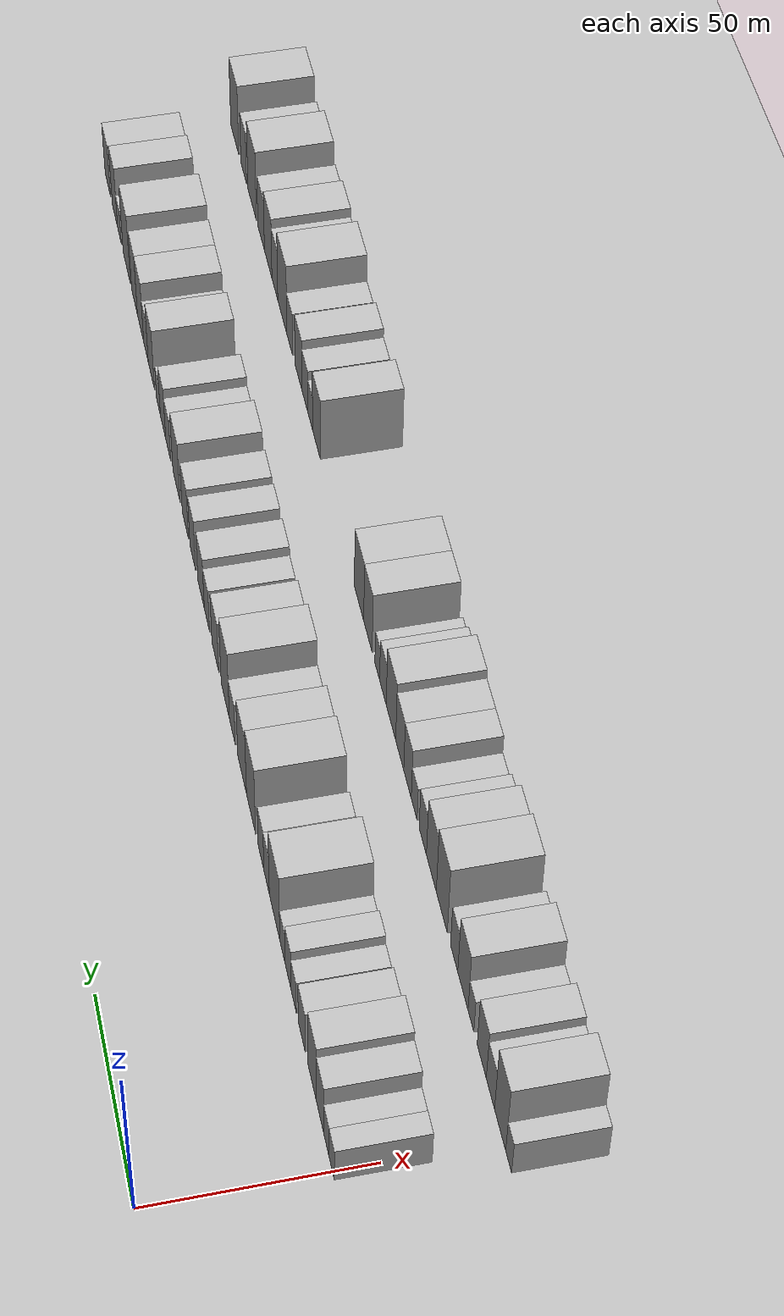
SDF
<sdf version="1.6">
 <world name="default">
  <include><name>ground_plane_1</name><uri>model://HANNAS_ground_plane</uri></include>
  <include>
   <name>ground_plane_2</name>
   <uri>model://HANNAS_ground_plane</uri>
   <pose>100 0 0  0 0 0</pose>
  </include>
  <model name="building_31">
   <static>1</static>
   <pose>50.0000 0.5402 0 0.000000 0.000000 0.000000</pose>
   <link name="link">
    <pose>0 0 6.00 0 0 0</pose>
    <collision name="collision"><geometry><box><size>20.0000 5.2715 12.0000</size></box></geometry></collision>
    <visual name="visual">
     <cast_shadows>0</cast_shadows>
     <geometry><box><size>20.0000 5.2715 12.0000</size></box></geometry>
     <material>
      <script>
       <uri>model://HANNAS_wall/materials/scripts</uri>
       <uri>model://HANNAS_wall/materials/textures</uri>
       <name>vrc/HANNAS_wall</name>
      </script>
     </material>
    </visual>
   </link>
  </model>
  <model name="building_32">
   <static>1</static>
   <pose>50.0000 5.8789 0 0.000000 0.000000 0.000000</pose>
   <link name="link">
    <pose>0 0 6.00 0 0 0</pose>
    <collision name="collision"><geometry><box><size>20.0000 5.4058 12.0000</size></box></geometry></collision>
    <visual name="visual">
     <cast_shadows>0</cast_shadows>
     <geometry><box><size>20.0000 5.4058 12.0000</size></box></geometry>
     <material>
      <script>
       <uri>model://HANNAS_wall/materials/scripts</uri>
       <uri>model://HANNAS_wall/materials/textures</uri>
       <name>vrc/HANNAS_wall</name>
      </script>
     </material>
    </visual>
   </link>
  </model>
  <model name="building_33">
   <static>1</static>
   <pose>50.0000 12.2712 0 0.000000 0.000000 0.000000</pose>
   <link name="link">
    <pose>0 0 9.00 0 0 0</pose>
    <collision name="collision"><geometry><box><size>20.0000 7.3789 18.0000</size></box></geometry></collision>
    <visual name="visual">
     <cast_shadows>0</cast_shadows>
     <geometry><box><size>20.0000 7.3789 18.0000</size></box></geometry>
     <material>
      <script>
       <uri>model://HANNAS_wall/materials/scripts</uri>
       <uri>model://HANNAS_wall/materials/textures</uri>
       <name>vrc/HANNAS_wall</name>
      </script>
     </material>
    </visual>
   </link>
  </model>
  <model name="building_34">
   <static>1</static>
   <pose>50.0000 20.3390 0 0.000000 0.000000 0.000000</pose>
   <link name="link">
    <pose>0 0 10.50 0 0 0</pose>
    <collision name="collision"><geometry><box><size>20.0000 8.7569 21.0000</size></box></geometry></collision>
    <visual name="visual">
     <cast_shadows>0</cast_shadows>
     <geometry><box><size>20.0000 8.7569 21.0000</size></box></geometry>
     <material>
      <script>
       <uri>model://HANNAS_wall/materials/scripts</uri>
       <uri>model://HANNAS_wall/materials/textures</uri>
       <name>vrc/HANNAS_wall</name>
      </script>
     </material>
    </visual>
   </link>
  </model>
  <model name="building_35">
   <static>1</static>
   <pose>50.0000 31.3894 0 0.000000 0.000000 0.000000</pose>
   <link name="link">
    <pose>0 0 7.50 0 0 0</pose>
    <collision name="collision"><geometry><box><size>20.0000 7.3439 15.0000</size></box></geometry></collision>
    <visual name="visual">
     <cast_shadows>0</cast_shadows>
     <geometry><box><size>20.0000 7.3439 15.0000</size></box></geometry>
     <material>
      <script>
       <uri>model://HANNAS_wall/materials/scripts</uri>
       <uri>model://HANNAS_wall/materials/textures</uri>
       <name>vrc/HANNAS_wall</name>
      </script>
     </material>
    </visual>
   </link>
  </model>
  <model name="building_36">
   <static>1</static>
   <pose>50.0000 39.9124 0 0.000000 0.000000 0.000000</pose>
   <link name="link">
    <pose>0 0 6.00 0 0 0</pose>
    <collision name="collision"><geometry><box><size>20.0000 5.7020 12.0000</size></box></geometry></collision>
    <visual name="visual">
     <cast_shadows>0</cast_shadows>
     <geometry><box><size>20.0000 5.7020 12.0000</size></box></geometry>
     <material>
      <script>
       <uri>model://HANNAS_wall/materials/scripts</uri>
       <uri>model://HANNAS_wall/materials/textures</uri>
       <name>vrc/HANNAS_wall</name>
      </script>
     </material>
    </visual>
   </link>
  </model>
  <model name="building_37">
   <static>1</static>
   <pose>50.0000 45.9449 0 0.000000 0.000000 0.000000</pose>
   <link name="link">
    <pose>0 0 7.50 0 0 0</pose>
    <collision name="collision"><geometry><box><size>20.0000 6.3630 15.0000</size></box></geometry></collision>
    <visual name="visual">
     <cast_shadows>0</cast_shadows>
     <geometry><box><size>20.0000 6.3630 15.0000</size></box></geometry>
     <material>
      <script>
       <uri>model://HANNAS_wall/materials/scripts</uri>
       <uri>model://HANNAS_wall/materials/textures</uri>
       <name>vrc/HANNAS_wall</name>
      </script>
     </material>
    </visual>
   </link>
  </model>
  <model name="building_38">
   <static>1</static>
   <pose>50.0000 52.0841 0 0.000000 0.000000 0.000000</pose>
   <link name="link">
    <pose>0 0 6.00 0 0 0</pose>
    <collision name="collision"><geometry><box><size>20.0000 5.9154 12.0000</size></box></geometry></collision>
    <visual name="visual">
     <cast_shadows>0</cast_shadows>
     <geometry><box><size>20.0000 5.9154 12.0000</size></box></geometry>
     <material>
      <script>
       <uri>model://HANNAS_wall/materials/scripts</uri>
       <uri>model://HANNAS_wall/materials/textures</uri>
       <name>vrc/HANNAS_wall</name>
      </script>
     </material>
    </visual>
   </link>
  </model>
  <model name="building_39">
   <static>1</static>
   <pose>50.0000 60.9253 0 0.000000 0.000000 0.000000</pose>
   <link name="link">
    <pose>0 0 12.00 0 0 0</pose>
    <collision name="collision"><geometry><box><size>20.0000 11.7671 24.0000</size></box></geometry></collision>
    <visual name="visual">
     <cast_shadows>0</cast_shadows>
     <geometry><box><size>20.0000 11.7671 24.0000</size></box></geometry>
     <material>
      <script>
       <uri>model://HANNAS_wall/materials/scripts</uri>
       <uri>model://HANNAS_wall/materials/textures</uri>
       <name>vrc/HANNAS_wall</name>
      </script>
     </material>
    </visual>
   </link>
  </model>
  <model name="building_40">
   <static>1</static>
   <pose>50.0000 69.9162 0 0.000000 0.000000 0.000000</pose>
   <link name="link">
    <pose>0 0 7.50 0 0 0</pose>
    <collision name="collision"><geometry><box><size>20.0000 6.2145 15.0000</size></box></geometry></collision>
    <visual name="visual">
     <cast_shadows>0</cast_shadows>
     <geometry><box><size>20.0000 6.2145 15.0000</size></box></geometry>
     <material>
      <script>
       <uri>model://HANNAS_wall/materials/scripts</uri>
       <uri>model://HANNAS_wall/materials/textures</uri>
       <name>vrc/HANNAS_wall</name>
      </script>
     </material>
    </visual>
   </link>
  </model>
  <model name="building_41">
   <static>1</static>
   <pose>50.0000 76.3128 0 0.000000 0.000000 0.000000</pose>
   <link name="link">
    <pose>0 0 7.50 0 0 0</pose>
    <collision name="collision"><geometry><box><size>20.0000 6.5787 15.0000</size></box></geometry></collision>
    <visual name="visual">
     <cast_shadows>0</cast_shadows>
     <geometry><box><size>20.0000 6.5787 15.0000</size></box></geometry>
     <material>
      <script>
       <uri>model://HANNAS_wall/materials/scripts</uri>
       <uri>model://HANNAS_wall/materials/textures</uri>
       <name>vrc/HANNAS_wall</name>
      </script>
     </material>
    </visual>
   </link>
  </model>
  <model name="building_42">
   <static>1</static>
   <pose>50.0000 87.9561 0 0.000000 0.000000 0.000000</pose>
   <link name="link">
    <pose>0 0 12.00 0 0 0</pose>
    <collision name="collision"><geometry><box><size>20.0000 10.7080 24.0000</size></box></geometry></collision>
    <visual name="visual">
     <cast_shadows>0</cast_shadows>
     <geometry><box><size>20.0000 10.7080 24.0000</size></box></geometry>
     <material>
      <script>
       <uri>model://HANNAS_wall/materials/scripts</uri>
       <uri>model://HANNAS_wall/materials/textures</uri>
       <name>vrc/HANNAS_wall</name>
      </script>
     </material>
    </visual>
   </link>
  </model>
  <model name="building_43">
   <static>1</static>
   <pose>50.0000 98.5569 0 0.000000 0.000000 0.000000</pose>
   <link name="link">
    <pose>0 0 10.50 0 0 0</pose>
    <collision name="collision"><geometry><box><size>20.0000 10.4936 21.0000</size></box></geometry></collision>
    <visual name="visual">
     <cast_shadows>0</cast_shadows>
     <geometry><box><size>20.0000 10.4936 21.0000</size></box></geometry>
     <material>
      <script>
       <uri>model://HANNAS_wall/materials/scripts</uri>
       <uri>model://HANNAS_wall/materials/textures</uri>
       <name>vrc/HANNAS_wall</name>
      </script>
     </material>
    </visual>
   </link>
  </model>
  <model name="building_44">
   <static>1</static>
   <pose>50.0000 110.4333 0 0.000000 0.000000 0.000000</pose>
   <link name="link">
    <pose>0 0 7.50 0 0 0</pose>
    <collision name="collision"><geometry><box><size>20.0000 7.2592 15.0000</size></box></geometry></collision>
    <visual name="visual">
     <cast_shadows>0</cast_shadows>
     <geometry><box><size>20.0000 7.2592 15.0000</size></box></geometry>
     <material>
      <script>
       <uri>model://HANNAS_wall/materials/scripts</uri>
       <uri>model://HANNAS_wall/materials/textures</uri>
       <name>vrc/HANNAS_wall</name>
      </script>
     </material>
    </visual>
   </link>
  </model>
  <model name="building_45">
   <static>1</static>
   <pose>50.0000 119.1959 0 0.000000 0.000000 0.000000</pose>
   <link name="link">
    <pose>0 0 12.00 0 0 0</pose>
    <collision name="collision"><geometry><box><size>20.0000 10.2659 24.0000</size></box></geometry></collision>
    <visual name="visual">
     <cast_shadows>0</cast_shadows>
     <geometry><box><size>20.0000 10.2659 24.0000</size></box></geometry>
     <material>
      <script>
       <uri>model://HANNAS_wall/materials/scripts</uri>
       <uri>model://HANNAS_wall/materials/textures</uri>
       <name>vrc/HANNAS_wall</name>
      </script>
     </material>
    </visual>
   </link>
  </model>
  <model name="building_46">
   <static>1</static>
   <pose>50.0000 131.7334 0 0.000000 0.000000 0.000000</pose>
   <link name="link">
    <pose>0 0 9.00 0 0 0</pose>
    <collision name="collision"><geometry><box><size>20.0000 8.8091 18.0000</size></box></geometry></collision>
    <visual name="visual">
     <cast_shadows>0</cast_shadows>
     <geometry><box><size>20.0000 8.8091 18.0000</size></box></geometry>
     <material>
      <script>
       <uri>model://HANNAS_wall/materials/scripts</uri>
       <uri>model://HANNAS_wall/materials/textures</uri>
       <name>vrc/HANNAS_wall</name>
      </script>
     </material>
    </visual>
   </link>
  </model>
  <model name="building_47">
   <static>1</static>
   <pose>50.0000 142.5365 0 0.000000 0.000000 0.000000</pose>
   <link name="link">
    <pose>0 0 7.50 0 0 0</pose>
    <collision name="collision"><geometry><box><size>20.0000 6.7971 15.0000</size></box></geometry></collision>
    <visual name="visual">
     <cast_shadows>0</cast_shadows>
     <geometry><box><size>20.0000 6.7971 15.0000</size></box></geometry>
     <material>
      <script>
       <uri>model://HANNAS_wall/materials/scripts</uri>
       <uri>model://HANNAS_wall/materials/textures</uri>
       <name>vrc/HANNAS_wall</name>
      </script>
     </material>
    </visual>
   </link>
  </model>
  <model name="building_48">
   <static>1</static>
   <pose>50.0000 150.1659 0 0.000000 0.000000 0.000000</pose>
   <link name="link">
    <pose>0 0 9.00 0 0 0</pose>
    <collision name="collision"><geometry><box><size>20.0000 8.4616 18.0000</size></box></geometry></collision>
    <visual name="visual">
     <cast_shadows>0</cast_shadows>
     <geometry><box><size>20.0000 8.4616 18.0000</size></box></geometry>
     <material>
      <script>
       <uri>model://HANNAS_wall/materials/scripts</uri>
       <uri>model://HANNAS_wall/materials/textures</uri>
       <name>vrc/HANNAS_wall</name>
      </script>
     </material>
    </visual>
   </link>
  </model>
  <model name="building_49">
   <static>1</static>
   <pose>50.0000 161.2245 0 0.000000 0.000000 0.000000</pose>
   <link name="link">
    <pose>0 0 9.00 0 0 0</pose>
    <collision name="collision"><geometry><box><size>20.0000 7.6556 18.0000</size></box></geometry></collision>
    <visual name="visual">
     <cast_shadows>0</cast_shadows>
     <geometry><box><size>20.0000 7.6556 18.0000</size></box></geometry>
     <material>
      <script>
       <uri>model://HANNAS_wall/materials/scripts</uri>
       <uri>model://HANNAS_wall/materials/textures</uri>
       <name>vrc/HANNAS_wall</name>
      </script>
     </material>
    </visual>
   </link>
  </model>
  <model name="building_50">
   <static>1</static>
   <pose>50.0000 171.2923 0 0.000000 0.000000 0.000000</pose>
   <link name="link">
    <pose>0 0 9.00 0 0 0</pose>
    <collision name="collision"><geometry><box><size>20.0000 8.4799 18.0000</size></box></geometry></collision>
    <visual name="visual">
     <cast_shadows>0</cast_shadows>
     <geometry><box><size>20.0000 8.4799 18.0000</size></box></geometry>
     <material>
      <script>
       <uri>model://HANNAS_wall/materials/scripts</uri>
       <uri>model://HANNAS_wall/materials/textures</uri>
       <name>vrc/HANNAS_wall</name>
      </script>
     </material>
    </visual>
   </link>
  </model>
  <model name="building_51">
   <static>1</static>
   <pose>50.0000 183.5639 0 0.000000 0.000000 0.000000</pose>
   <link name="link">
    <pose>0 0 10.50 0 0 0</pose>
    <collision name="collision"><geometry><box><size>20.0000 10.0632 21.0000</size></box></geometry></collision>
    <visual name="visual">
     <cast_shadows>0</cast_shadows>
     <geometry><box><size>20.0000 10.0632 21.0000</size></box></geometry>
     <material>
      <script>
       <uri>model://HANNAS_wall/materials/scripts</uri>
       <uri>model://HANNAS_wall/materials/textures</uri>
       <name>vrc/HANNAS_wall</name>
      </script>
     </material>
    </visual>
   </link>
  </model>
  <model name="building_52">
   <static>1</static>
   <pose>50.0000 195.1782 0 0.000000 0.000000 0.000000</pose>
   <link name="link">
    <pose>0 0 7.50 0 0 0</pose>
    <collision name="collision"><geometry><box><size>20.0000 7.1654 15.0000</size></box></geometry></collision>
    <visual name="visual">
     <cast_shadows>0</cast_shadows>
     <geometry><box><size>20.0000 7.1654 15.0000</size></box></geometry>
     <material>
      <script>
       <uri>model://HANNAS_wall/materials/scripts</uri>
       <uri>model://HANNAS_wall/materials/textures</uri>
       <name>vrc/HANNAS_wall</name>
      </script>
     </material>
    </visual>
   </link>
  </model>
  <model name="building_53">
   <static>1</static>
   <pose>50.0000 202.5631 0 0.000000 0.000000 0.000000</pose>
   <link name="link">
    <pose>0 0 9.00 0 0 0</pose>
    <collision name="collision"><geometry><box><size>20.0000 7.6042 18.0000</size></box></geometry></collision>
    <visual name="visual">
     <cast_shadows>0</cast_shadows>
     <geometry><box><size>20.0000 7.6042 18.0000</size></box></geometry>
     <material>
      <script>
       <uri>model://HANNAS_wall/materials/scripts</uri>
       <uri>model://HANNAS_wall/materials/textures</uri>
       <name>vrc/HANNAS_wall</name>
      </script>
     </material>
    </visual>
   </link>
  </model>
  <model name="building_54">
   <static>1</static>
   <pose>50.0000 209.1715 0 0.000000 0.000000 0.000000</pose>
   <link name="link">
    <pose>0 0 6.00 0 0 0</pose>
    <collision name="collision"><geometry><box><size>20.0000 5.6125 12.0000</size></box></geometry></collision>
    <visual name="visual">
     <cast_shadows>0</cast_shadows>
     <geometry><box><size>20.0000 5.6125 12.0000</size></box></geometry>
     <material>
      <script>
       <uri>model://HANNAS_wall/materials/scripts</uri>
       <uri>model://HANNAS_wall/materials/textures</uri>
       <name>vrc/HANNAS_wall</name>
      </script>
     </material>
    </visual>
   </link>
  </model>
  <model name="building_55">
   <static>1</static>
   <pose>50.0000 219.5909 0 0.000000 0.000000 0.000000</pose>
   <link name="link">
    <pose>0 0 10.50 0 0 0</pose>
    <collision name="collision"><geometry><box><size>20.0000 9.2264 21.0000</size></box></geometry></collision>
    <visual name="visual">
     <cast_shadows>0</cast_shadows>
     <geometry><box><size>20.0000 9.2264 21.0000</size></box></geometry>
     <material>
      <script>
       <uri>model://HANNAS_wall/materials/scripts</uri>
       <uri>model://HANNAS_wall/materials/textures</uri>
       <name>vrc/HANNAS_wall</name>
      </script>
     </material>
    </visual>
   </link>
  </model>
  <model name="building_56">
   <static>1</static>
   <pose>50.0000 227.6400 0 0.000000 0.000000 0.000000</pose>
   <link name="link">
    <pose>0 0 7.50 0 0 0</pose>
    <collision name="collision"><geometry><box><size>20.0000 6.8717 15.0000</size></box></geometry></collision>
    <visual name="visual">
     <cast_shadows>0</cast_shadows>
     <geometry><box><size>20.0000 6.8717 15.0000</size></box></geometry>
     <material>
      <script>
       <uri>model://HANNAS_wall/materials/scripts</uri>
       <uri>model://HANNAS_wall/materials/textures</uri>
       <name>vrc/HANNAS_wall</name>
      </script>
     </material>
    </visual>
   </link>
  </model>
  <model name="building_57">
   <static>1</static>
   <pose>50.0000 235.8443 0 0.000000 0.000000 0.000000</pose>
   <link name="link">
    <pose>0 0 10.50 0 0 0</pose>
    <collision name="collision"><geometry><box><size>20.0000 9.5370 21.0000</size></box></geometry></collision>
    <visual name="visual">
     <cast_shadows>0</cast_shadows>
     <geometry><box><size>20.0000 9.5370 21.0000</size></box></geometry>
     <material>
      <script>
       <uri>model://HANNAS_wall/materials/scripts</uri>
       <uri>model://HANNAS_wall/materials/textures</uri>
       <name>vrc/HANNAS_wall</name>
      </script>
     </material>
    </visual>
   </link>
  </model>
  <model name="building_58">
   <static>1</static>
   <pose>50.0000 244.9962 0 0.000000 0.000000 0.000000</pose>
   <link name="link">
    <pose>0 0 10.50 0 0 0</pose>
    <collision name="collision"><geometry><box><size>20.0000 8.7669 21.0000</size></box></geometry></collision>
    <visual name="visual">
     <cast_shadows>0</cast_shadows>
     <geometry><box><size>20.0000 8.7669 21.0000</size></box></geometry>
     <material>
      <script>
       <uri>model://HANNAS_wall/materials/scripts</uri>
       <uri>model://HANNAS_wall/materials/textures</uri>
       <name>vrc/HANNAS_wall</name>
      </script>
     </material>
    </visual>
   </link>
  </model>
  <model name="building_59">
   <static>1</static>
   <pose>50.0000 257.0644 0 0.000000 0.000000 0.000000</pose>
   <link name="link">
    <pose>0 0 12.00 0 0 0</pose>
    <collision name="collision"><geometry><box><size>20.0000 11.3694 24.0000</size></box></geometry></collision>
    <visual name="visual">
     <cast_shadows>0</cast_shadows>
     <geometry><box><size>20.0000 11.3694 24.0000</size></box></geometry>
     <material>
      <script>
       <uri>model://HANNAS_wall/materials/scripts</uri>
       <uri>model://HANNAS_wall/materials/textures</uri>
       <name>vrc/HANNAS_wall</name>
      </script>
     </material>
    </visual>
   </link>
  </model>
  <model name="building_60">
   <static>1</static>
   <pose>50.0000 268.7016 0 0.000000 0.000000 0.000000</pose>
   <link name="link">
    <pose>0 0 6.00 0 0 0</pose>
    <collision name="collision"><geometry><box><size>20.0000 5.9051 12.0000</size></box></geometry></collision>
    <visual name="visual">
     <cast_shadows>0</cast_shadows>
     <geometry><box><size>20.0000 5.9051 12.0000</size></box></geometry>
     <material>
      <script>
       <uri>model://HANNAS_wall/materials/scripts</uri>
       <uri>model://HANNAS_wall/materials/textures</uri>
       <name>vrc/HANNAS_wall</name>
      </script>
     </material>
    </visual>
   </link>
  </model>
  <model name="building_61">
   <static>1</static>
   <pose>50.0000 275.8847 0 0.000000 0.000000 0.000000</pose>
   <link name="link">
    <pose>0 0 10.50 0 0 0</pose>
    <collision name="collision"><geometry><box><size>20.0000 8.4611 21.0000</size></box></geometry></collision>
    <visual name="visual">
     <cast_shadows>0</cast_shadows>
     <geometry><box><size>20.0000 8.4611 21.0000</size></box></geometry>
     <material>
      <script>
       <uri>model://HANNAS_wall/materials/scripts</uri>
       <uri>model://HANNAS_wall/materials/textures</uri>
       <name>vrc/HANNAS_wall</name>
      </script>
     </material>
    </visual>
   </link>
  </model>
  <model name="building_62">
   <static>1</static>
   <pose>50.0000 287.5691 0 0.000000 0.000000 0.000000</pose>
   <link name="link">
    <pose>0 0 9.00 0 0 0</pose>
    <collision name="collision"><geometry><box><size>20.0000 8.9076 18.0000</size></box></geometry></collision>
    <visual name="visual">
     <cast_shadows>0</cast_shadows>
     <geometry><box><size>20.0000 8.9076 18.0000</size></box></geometry>
     <material>
      <script>
       <uri>model://HANNAS_wall/materials/scripts</uri>
       <uri>model://HANNAS_wall/materials/textures</uri>
       <name>vrc/HANNAS_wall</name>
      </script>
     </material>
    </visual>
   </link>
  </model>
  <model name="building_96">
   <static>1</static>
   <pose>85.0000 -5.0979 0 0.000000 0.000000 0.000000</pose>
   <link name="link">
    <pose>0 0 6.00 0 0 0</pose>
    <collision name="collision"><geometry><box><size>20.0000 5.0297 12.0000</size></box></geometry></collision>
    <visual name="visual">
     <cast_shadows>0</cast_shadows>
     <geometry><box><size>20.0000 5.0297 12.0000</size></box></geometry>
     <material>
      <script>
       <uri>model://HANNAS_wall/materials/scripts</uri>
       <uri>model://HANNAS_wall/materials/textures</uri>
       <name>vrc/HANNAS_wall</name>
      </script>
     </material>
    </visual>
   </link>
  </model>
  <model name="building_97">
   <static>1</static>
   <pose>85.0000 2.2299 0 0.000000 0.000000 0.000000</pose>
   <link name="link">
    <pose>0 0 12.00 0 0 0</pose>
    <collision name="collision"><geometry><box><size>20.0000 9.6257 24.0000</size></box></geometry></collision>
    <visual name="visual">
     <cast_shadows>0</cast_shadows>
     <geometry><box><size>20.0000 9.6257 24.0000</size></box></geometry>
     <material>
      <script>
       <uri>model://HANNAS_wall/materials/scripts</uri>
       <uri>model://HANNAS_wall/materials/textures</uri>
       <name>vrc/HANNAS_wall</name>
      </script>
     </material>
    </visual>
   </link>
  </model>
  <model name="building_98">
   <static>1</static>
   <pose>85.0000 10.6538 0 0.000000 0.000000 0.000000</pose>
   <link name="link">
    <pose>0 0 7.50 0 0 0</pose>
    <collision name="collision"><geometry><box><size>20.0000 7.2222 15.0000</size></box></geometry></collision>
    <visual name="visual">
     <cast_shadows>0</cast_shadows>
     <geometry><box><size>20.0000 7.2222 15.0000</size></box></geometry>
     <material>
      <script>
       <uri>model://HANNAS_wall/materials/scripts</uri>
       <uri>model://HANNAS_wall/materials/textures</uri>
       <name>vrc/HANNAS_wall</name>
      </script>
     </material>
    </visual>
   </link>
  </model>
  <model name="building_99">
   <static>1</static>
   <pose>85.0000 18.3174 0 0.000000 0.000000 0.000000</pose>
   <link name="link">
    <pose>0 0 9.00 0 0 0</pose>
    <collision name="collision"><geometry><box><size>20.0000 8.1050 18.0000</size></box></geometry></collision>
    <visual name="visual">
     <cast_shadows>0</cast_shadows>
     <geometry><box><size>20.0000 8.1050 18.0000</size></box></geometry>
     <material>
      <script>
       <uri>model://HANNAS_wall/materials/scripts</uri>
       <uri>model://HANNAS_wall/materials/textures</uri>
       <name>vrc/HANNAS_wall</name>
      </script>
     </material>
    </visual>
   </link>
  </model>
  <model name="building_100">
   <static>1</static>
   <pose>85.0000 27.9980 0 0.000000 0.000000 0.000000</pose>
   <link name="link">
    <pose>0 0 6.00 0 0 0</pose>
    <collision name="collision"><geometry><box><size>20.0000 5.2563 12.0000</size></box></geometry></collision>
    <visual name="visual">
     <cast_shadows>0</cast_shadows>
     <geometry><box><size>20.0000 5.2563 12.0000</size></box></geometry>
     <material>
      <script>
       <uri>model://HANNAS_wall/materials/scripts</uri>
       <uri>model://HANNAS_wall/materials/textures</uri>
       <name>vrc/HANNAS_wall</name>
      </script>
     </material>
    </visual>
   </link>
  </model>
  <model name="building_101">
   <static>1</static>
   <pose>85.0000 35.3439 0 0.000000 0.000000 0.000000</pose>
   <link name="link">
    <pose>0 0 10.50 0 0 0</pose>
    <collision name="collision"><geometry><box><size>20.0000 9.4355 21.0000</size></box></geometry></collision>
    <visual name="visual">
     <cast_shadows>0</cast_shadows>
     <geometry><box><size>20.0000 9.4355 21.0000</size></box></geometry>
     <material>
      <script>
       <uri>model://HANNAS_wall/materials/scripts</uri>
       <uri>model://HANNAS_wall/materials/textures</uri>
       <name>vrc/HANNAS_wall</name>
      </script>
     </material>
    </visual>
   </link>
  </model>
  <model name="building_102">
   <static>1</static>
   <pose>85.0000 43.4659 0 0.000000 0.000000 0.000000</pose>
   <link name="link">
    <pose>0 0 7.50 0 0 0</pose>
    <collision name="collision"><geometry><box><size>20.0000 6.8085 15.0000</size></box></geometry></collision>
    <visual name="visual">
     <cast_shadows>0</cast_shadows>
     <geometry><box><size>20.0000 6.8085 15.0000</size></box></geometry>
     <material>
      <script>
       <uri>model://HANNAS_wall/materials/scripts</uri>
       <uri>model://HANNAS_wall/materials/textures</uri>
       <name>vrc/HANNAS_wall</name>
      </script>
     </material>
    </visual>
   </link>
  </model>
  <model name="building_103">
   <static>1</static>
   <pose>85.0000 55.1387 0 0.000000 0.000000 0.000000</pose>
   <link name="link">
    <pose>0 0 12.00 0 0 0</pose>
    <collision name="collision"><geometry><box><size>20.0000 10.5371 24.0000</size></box></geometry></collision>
    <visual name="visual">
     <cast_shadows>0</cast_shadows>
     <geometry><box><size>20.0000 10.5371 24.0000</size></box></geometry>
     <material>
      <script>
       <uri>model://HANNAS_wall/materials/scripts</uri>
       <uri>model://HANNAS_wall/materials/textures</uri>
       <name>vrc/HANNAS_wall</name>
      </script>
     </material>
    </visual>
   </link>
  </model>
  <model name="building_104">
   <static>1</static>
   <pose>85.0000 65.2038 0 0.000000 0.000000 0.000000</pose>
   <link name="link">
    <pose>0 0 10.50 0 0 0</pose>
    <collision name="collision"><geometry><box><size>20.0000 9.5932 21.0000</size></box></geometry></collision>
    <visual name="visual">
     <cast_shadows>0</cast_shadows>
     <geometry><box><size>20.0000 9.5932 21.0000</size></box></geometry>
     <material>
      <script>
       <uri>model://HANNAS_wall/materials/scripts</uri>
       <uri>model://HANNAS_wall/materials/textures</uri>
       <name>vrc/HANNAS_wall</name>
      </script>
     </material>
    </visual>
   </link>
  </model>
  <model name="building_105">
   <static>1</static>
   <pose>85.0000 73.6062 0 0.000000 0.000000 0.000000</pose>
   <link name="link">
    <pose>0 0 7.50 0 0 0</pose>
    <collision name="collision"><geometry><box><size>20.0000 7.2116 15.0000</size></box></geometry></collision>
    <visual name="visual">
     <cast_shadows>0</cast_shadows>
     <geometry><box><size>20.0000 7.2116 15.0000</size></box></geometry>
     <material>
      <script>
       <uri>model://HANNAS_wall/materials/scripts</uri>
       <uri>model://HANNAS_wall/materials/textures</uri>
       <name>vrc/HANNAS_wall</name>
      </script>
     </material>
    </visual>
   </link>
  </model>
  <model name="building_106">
   <static>1</static>
   <pose>85.0000 82.1538 0 0.000000 0.000000 0.000000</pose>
   <link name="link">
    <pose>0 0 6.00 0 0 0</pose>
    <collision name="collision"><geometry><box><size>20.0000 5.8837 12.0000</size></box></geometry></collision>
    <visual name="visual">
     <cast_shadows>0</cast_shadows>
     <geometry><box><size>20.0000 5.8837 12.0000</size></box></geometry>
     <material>
      <script>
       <uri>model://HANNAS_wall/materials/scripts</uri>
       <uri>model://HANNAS_wall/materials/textures</uri>
       <name>vrc/HANNAS_wall</name>
      </script>
     </material>
    </visual>
   </link>
  </model>
  <model name="building_107">
   <static>1</static>
   <pose>85.0000 88.9101 0 0.000000 0.000000 0.000000</pose>
   <link name="link">
    <pose>0 0 9.00 0 0 0</pose>
    <collision name="collision"><geometry><box><size>20.0000 7.6291 18.0000</size></box></geometry></collision>
    <visual name="visual">
     <cast_shadows>0</cast_shadows>
     <geometry><box><size>20.0000 7.6291 18.0000</size></box></geometry>
     <material>
      <script>
       <uri>model://HANNAS_wall/materials/scripts</uri>
       <uri>model://HANNAS_wall/materials/textures</uri>
       <name>vrc/HANNAS_wall</name>
      </script>
     </material>
    </visual>
   </link>
  </model>
  <model name="building_108">
   <static>1</static>
   <pose>85.0000 96.8719 0 0.000000 0.000000 0.000000</pose>
   <link name="link">
    <pose>0 0 9.00 0 0 0</pose>
    <collision name="collision"><geometry><box><size>20.0000 8.2944 18.0000</size></box></geometry></collision>
    <visual name="visual">
     <cast_shadows>0</cast_shadows>
     <geometry><box><size>20.0000 8.2944 18.0000</size></box></geometry>
     <material>
      <script>
       <uri>model://HANNAS_wall/materials/scripts</uri>
       <uri>model://HANNAS_wall/materials/textures</uri>
       <name>vrc/HANNAS_wall</name>
      </script>
     </material>
    </visual>
   </link>
  </model>
  <model name="building_109">
   <static>1</static>
   <pose>85.0000 105.9787 0 0.000000 0.000000 0.000000</pose>
   <link name="link">
    <pose>0 0 10.50 0 0 0</pose>
    <collision name="collision"><geometry><box><size>20.0000 9.9191 21.0000</size></box></geometry></collision>
    <visual name="visual">
     <cast_shadows>0</cast_shadows>
     <geometry><box><size>20.0000 9.9191 21.0000</size></box></geometry>
     <material>
      <script>
       <uri>model://HANNAS_wall/materials/scripts</uri>
       <uri>model://HANNAS_wall/materials/textures</uri>
       <name>vrc/HANNAS_wall</name>
      </script>
     </material>
    </visual>
   </link>
  </model>
  <model name="building_110">
   <static>1</static>
   <pose>85.0000 114.4518 0 0.000000 0.000000 0.000000</pose>
   <link name="link">
    <pose>0 0 7.50 0 0 0</pose>
    <collision name="collision"><geometry><box><size>20.0000 7.0272 15.0000</size></box></geometry></collision>
    <visual name="visual">
     <cast_shadows>0</cast_shadows>
     <geometry><box><size>20.0000 7.0272 15.0000</size></box></geometry>
     <material>
      <script>
       <uri>model://HANNAS_wall/materials/scripts</uri>
       <uri>model://HANNAS_wall/materials/textures</uri>
       <name>vrc/HANNAS_wall</name>
      </script>
     </material>
    </visual>
   </link>
  </model>
  <model name="building_111">
   <static>1</static>
   <pose>85.0000 120.5066 0 0.000000 0.000000 0.000000</pose>
   <link name="link">
    <pose>0 0 6.00 0 0 0</pose>
    <collision name="collision"><geometry><box><size>20.0000 5.0823 12.0000</size></box></geometry></collision>
    <visual name="visual">
     <cast_shadows>0</cast_shadows>
     <geometry><box><size>20.0000 5.0823 12.0000</size></box></geometry>
     <material>
      <script>
       <uri>model://HANNAS_wall/materials/scripts</uri>
       <uri>model://HANNAS_wall/materials/textures</uri>
       <name>vrc/HANNAS_wall</name>
      </script>
     </material>
    </visual>
   </link>
  </model>
  <model name="building_112">
   <static>1</static>
   <pose>85.0000 130.6578 0 0.000000 0.000000 0.000000</pose>
   <link name="link">
    <pose>0 0 10.50 0 0 0</pose>
    <collision name="collision"><geometry><box><size>20.0000 9.2199 21.0000</size></box></geometry></collision>
    <visual name="visual">
     <cast_shadows>0</cast_shadows>
     <geometry><box><size>20.0000 9.2199 21.0000</size></box></geometry>
     <material>
      <script>
       <uri>model://HANNAS_wall/materials/scripts</uri>
       <uri>model://HANNAS_wall/materials/textures</uri>
       <name>vrc/HANNAS_wall</name>
      </script>
     </material>
    </visual>
   </link>
  </model>
  <model name="building_113">
   <static>1</static>
   <pose>85.0000 140.4410 0 0.000000 0.000000 0.000000</pose>
   <link name="link">
    <pose>0 0 10.50 0 0 0</pose>
    <collision name="collision"><geometry><box><size>20.0000 10.3465 21.0000</size></box></geometry></collision>
    <visual name="visual">
     <cast_shadows>0</cast_shadows>
     <geometry><box><size>20.0000 10.3465 21.0000</size></box></geometry>
     <material>
      <script>
       <uri>model://HANNAS_wall/materials/scripts</uri>
       <uri>model://HANNAS_wall/materials/textures</uri>
       <name>vrc/HANNAS_wall</name>
      </script>
     </material>
    </visual>
   </link>
  </model>
  <model name="building_114">
   <static>1</static>
   <pose>85.0000 189.8712 0 0.000000 0.000000 0.000000</pose>
   <link name="link">
    <pose>0 0 10.50 0 0 0</pose>
    <collision name="collision"><geometry><box><size>20.0000 9.5046 21.0000</size></box></geometry></collision>
    <visual name="visual">
     <cast_shadows>0</cast_shadows>
     <geometry><box><size>20.0000 9.5046 21.0000</size></box></geometry>
     <material>
      <script>
       <uri>model://HANNAS_wall/materials/scripts</uri>
       <uri>model://HANNAS_wall/materials/textures</uri>
       <name>vrc/HANNAS_wall</name>
      </script>
     </material>
    </visual>
   </link>
  </model>
  <model name="building_115">
   <static>1</static>
   <pose>85.0000 197.4571 0 0.000000 0.000000 0.000000</pose>
   <link name="link">
    <pose>0 0 6.00 0 0 0</pose>
    <collision name="collision"><geometry><box><size>20.0000 5.6673 12.0000</size></box></geometry></collision>
    <visual name="visual">
     <cast_shadows>0</cast_shadows>
     <geometry><box><size>20.0000 5.6673 12.0000</size></box></geometry>
     <material>
      <script>
       <uri>model://HANNAS_wall/materials/scripts</uri>
       <uri>model://HANNAS_wall/materials/textures</uri>
       <name>vrc/HANNAS_wall</name>
      </script>
     </material>
    </visual>
   </link>
  </model>
  <model name="building_116">
   <static>1</static>
   <pose>85.0000 203.9851 0 0.000000 0.000000 0.000000</pose>
   <link name="link">
    <pose>0 0 7.50 0 0 0</pose>
    <collision name="collision"><geometry><box><size>20.0000 7.3885 15.0000</size></box></geometry></collision>
    <visual name="visual">
     <cast_shadows>0</cast_shadows>
     <geometry><box><size>20.0000 7.3885 15.0000</size></box></geometry>
     <material>
      <script>
       <uri>model://HANNAS_wall/materials/scripts</uri>
       <uri>model://HANNAS_wall/materials/textures</uri>
       <name>vrc/HANNAS_wall</name>
      </script>
     </material>
    </visual>
   </link>
  </model>
  <model name="building_117">
   <static>1</static>
   <pose>85.0000 212.0667 0 0.000000 0.000000 0.000000</pose>
   <link name="link">
    <pose>0 0 9.00 0 0 0</pose>
    <collision name="collision"><geometry><box><size>20.0000 8.7748 18.0000</size></box></geometry></collision>
    <visual name="visual">
     <cast_shadows>0</cast_shadows>
     <geometry><box><size>20.0000 8.7748 18.0000</size></box></geometry>
     <material>
      <script>
       <uri>model://HANNAS_wall/materials/scripts</uri>
       <uri>model://HANNAS_wall/materials/textures</uri>
       <name>vrc/HANNAS_wall</name>
      </script>
     </material>
    </visual>
   </link>
  </model>
  <model name="building_118">
   <static>1</static>
   <pose>85.0000 223.1482 0 0.000000 0.000000 0.000000</pose>
   <link name="link">
    <pose>0 0 7.50 0 0 0</pose>
    <collision name="collision"><geometry><box><size>20.0000 7.3881 15.0000</size></box></geometry></collision>
    <visual name="visual">
     <cast_shadows>0</cast_shadows>
     <geometry><box><size>20.0000 7.3881 15.0000</size></box></geometry>
     <material>
      <script>
       <uri>model://HANNAS_wall/materials/scripts</uri>
       <uri>model://HANNAS_wall/materials/textures</uri>
       <name>vrc/HANNAS_wall</name>
      </script>
     </material>
    </visual>
   </link>
  </model>
  <model name="building_119">
   <static>1</static>
   <pose>85.0000 232.7232 0 0.000000 0.000000 0.000000</pose>
   <link name="link">
    <pose>0 0 12.00 0 0 0</pose>
    <collision name="collision"><geometry><box><size>20.0000 11.7620 24.0000</size></box></geometry></collision>
    <visual name="visual">
     <cast_shadows>0</cast_shadows>
     <geometry><box><size>20.0000 11.7620 24.0000</size></box></geometry>
     <material>
      <script>
       <uri>model://HANNAS_wall/materials/scripts</uri>
       <uri>model://HANNAS_wall/materials/textures</uri>
       <name>vrc/HANNAS_wall</name>
      </script>
     </material>
    </visual>
   </link>
  </model>
  <model name="building_120">
   <static>1</static>
   <pose>85.0000 242.4664 0 0.000000 0.000000 0.000000</pose>
   <link name="link">
    <pose>0 0 9.00 0 0 0</pose>
    <collision name="collision"><geometry><box><size>20.0000 7.7244 18.0000</size></box></geometry></collision>
    <visual name="visual">
     <cast_shadows>0</cast_shadows>
     <geometry><box><size>20.0000 7.7244 18.0000</size></box></geometry>
     <material>
      <script>
       <uri>model://HANNAS_wall/materials/scripts</uri>
       <uri>model://HANNAS_wall/materials/textures</uri>
       <name>vrc/HANNAS_wall</name>
      </script>
     </material>
    </visual>
   </link>
  </model>
  <model name="building_121">
   <static>1</static>
   <pose>85.0000 251.3262 0 0.000000 0.000000 0.000000</pose>
   <link name="link">
    <pose>0 0 10.50 0 0 0</pose>
    <collision name="collision"><geometry><box><size>20.0000 9.9950 21.0000</size></box></geometry></collision>
    <visual name="visual">
     <cast_shadows>0</cast_shadows>
     <geometry><box><size>20.0000 9.9950 21.0000</size></box></geometry>
     <material>
      <script>
       <uri>model://HANNAS_wall/materials/scripts</uri>
       <uri>model://HANNAS_wall/materials/textures</uri>
       <name>vrc/HANNAS_wall</name>
      </script>
     </material>
    </visual>
   </link>
  </model>
  <model name="building_122">
   <static>1</static>
   <pose>85.0000 260.8014 0 0.000000 0.000000 0.000000</pose>
   <link name="link">
    <pose>0 0 9.00 0 0 0</pose>
    <collision name="collision"><geometry><box><size>20.0000 8.9554 18.0000</size></box></geometry></collision>
    <visual name="visual">
     <cast_shadows>0</cast_shadows>
     <geometry><box><size>20.0000 8.9554 18.0000</size></box></geometry>
     <material>
      <script>
       <uri>model://HANNAS_wall/materials/scripts</uri>
       <uri>model://HANNAS_wall/materials/textures</uri>
       <name>vrc/HANNAS_wall</name>
      </script>
     </material>
    </visual>
   </link>
  </model>
  <model name="building_123">
   <static>1</static>
   <pose>85.0000 273.0685 0 0.000000 0.000000 0.000000</pose>
   <link name="link">
    <pose>0 0 12.00 0 0 0</pose>
    <collision name="collision"><geometry><box><size>20.0000 11.5788 24.0000</size></box></geometry></collision>
    <visual name="visual">
     <cast_shadows>0</cast_shadows>
     <geometry><box><size>20.0000 11.5788 24.0000</size></box></geometry>
     <material>
      <script>
       <uri>model://HANNAS_wall/materials/scripts</uri>
       <uri>model://HANNAS_wall/materials/textures</uri>
       <name>vrc/HANNAS_wall</name>
      </script>
     </material>
    </visual>
   </link>
  </model>
  <model name="building_124">
   <static>1</static>
   <pose>85.0000 284.8897 0 0.000000 0.000000 0.000000</pose>
   <link name="link">
    <pose>0 0 9.00 0 0 0</pose>
    <collision name="collision"><geometry><box><size>20.0000 8.0635 18.0000</size></box></geometry></collision>
    <visual name="visual">
     <cast_shadows>0</cast_shadows>
     <geometry><box><size>20.0000 8.0635 18.0000</size></box></geometry>
     <material>
      <script>
       <uri>model://HANNAS_wall/materials/scripts</uri>
       <uri>model://HANNAS_wall/materials/textures</uri>
       <name>vrc/HANNAS_wall</name>
      </script>
     </material>
    </visual>
   </link>
  </model>
  <model name="building_125">
   <static>1</static>
   <pose>85.0000 297.5986 0 0.000000 0.000000 0.000000</pose>
   <link name="link">
    <pose>0 0 12.00 0 0 0</pose>
    <collision name="collision"><geometry><box><size>20.0000 11.3543 24.0000</size></box></geometry></collision>
    <visual name="visual">
     <cast_shadows>0</cast_shadows>
     <geometry><box><size>20.0000 11.3543 24.0000</size></box></geometry>
     <material>
      <script>
       <uri>model://HANNAS_wall/materials/scripts</uri>
       <uri>model://HANNAS_wall/materials/textures</uri>
       <name>vrc/HANNAS_wall</name>
      </script>
     </material>
    </visual>
   </link>
  </model>
 </world>
</sdf>
